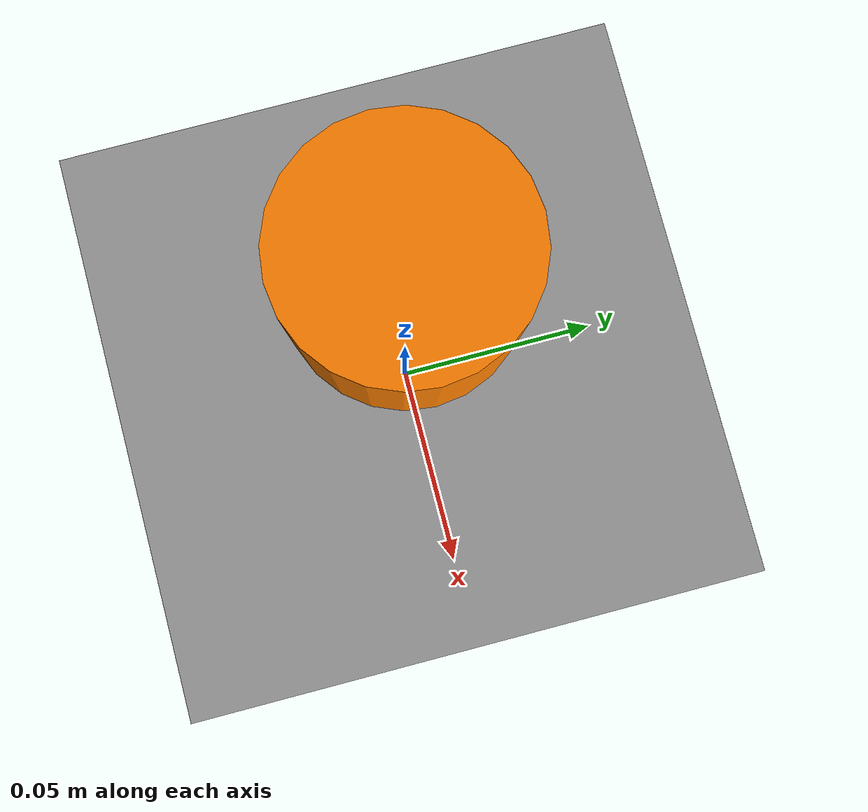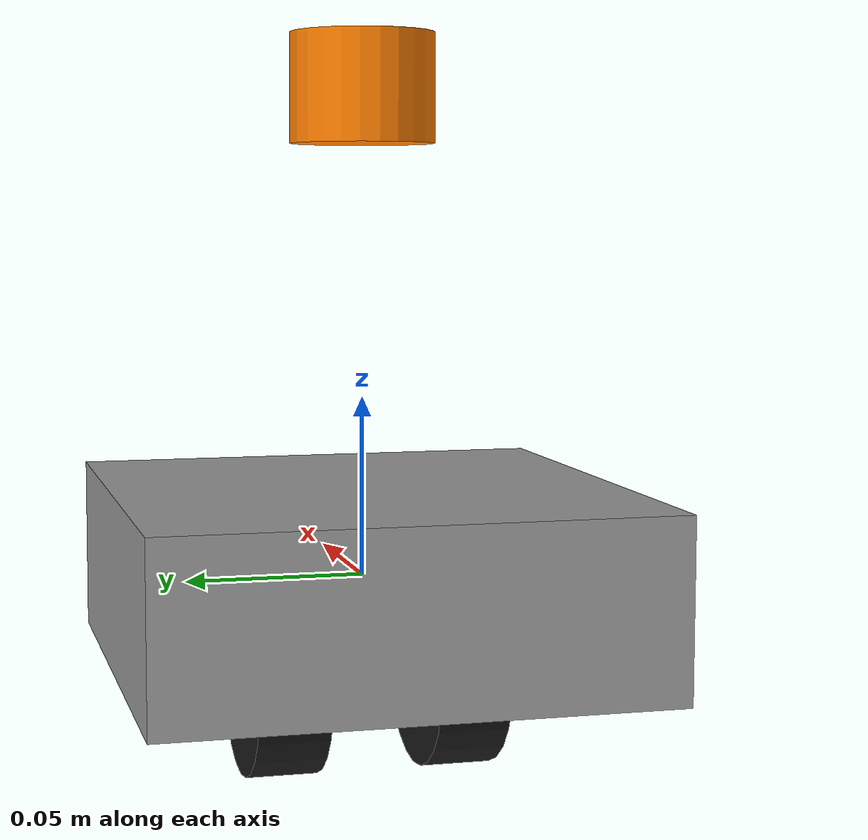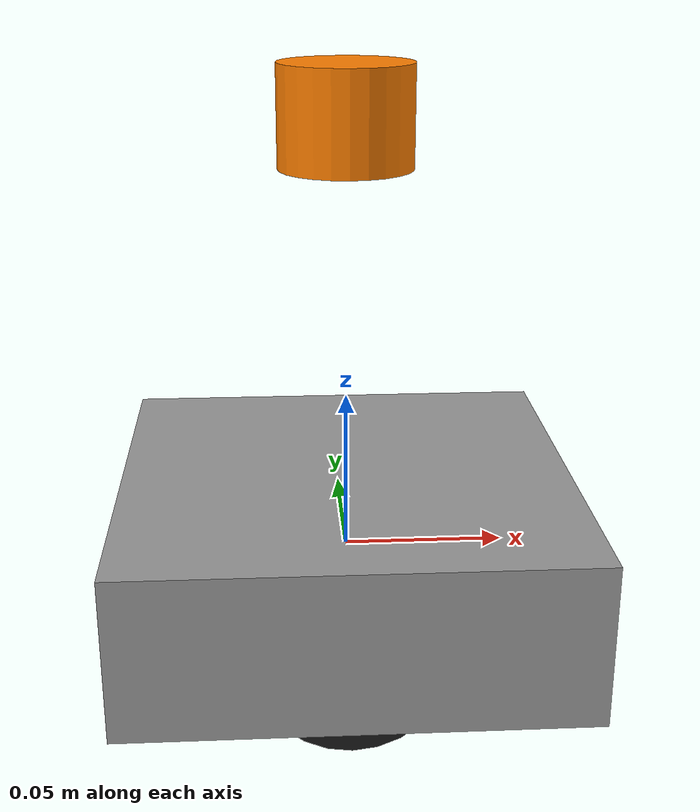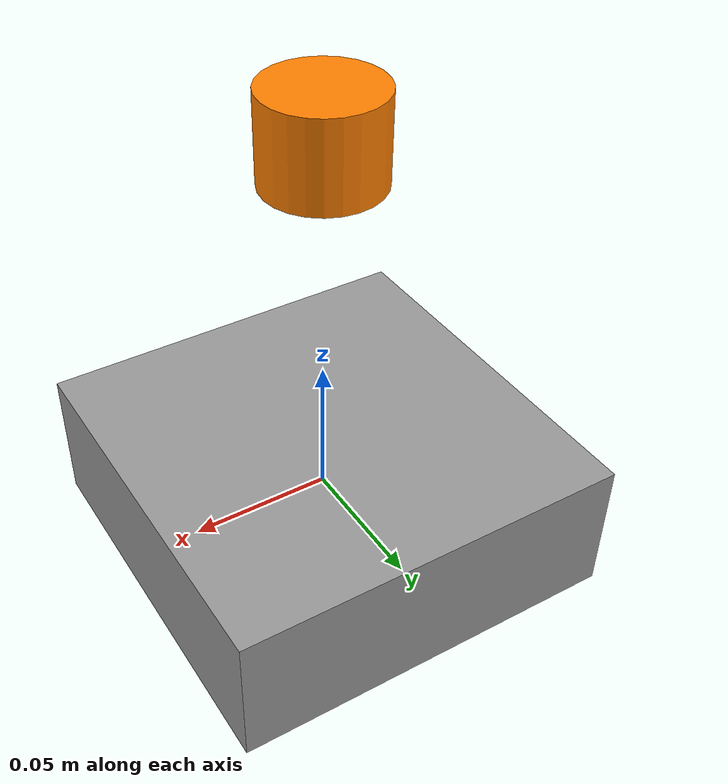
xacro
<?xml version="1.0"?>
<robot name="lidar_robot" xmlns:xacro="http://www.ros.org/wiki/xacro">

  <xacro:property name="base_length" value="0.14"/>
  <xacro:property name="base_width" value="0.14"/>
  <xacro:property name="base_height" value="0.05"/>
  <xacro:property name="wheel_radius" value="0.03"/>
  <xacro:property name="wheel_width" value="0.02"/>
  <xacro:property name="wheel_separation" value="0.05"/>
  <xacro:property name="caster_radius" value="0.015"/>
  <xacro:property name="lidar_height" value="0.16"/>

  <material name="grey"><color rgba="0.6 0.6 0.6 1"/></material>
  <material name="black"><color rgba="0.1 0.1 0.1 1"/></material>
  <material name="orange"><color rgba="1.0 0.5 0.0 1"/></material>

  <link name="base_link">
    <visual>
      <geometry><box size="${base_length} ${base_width} ${base_height}"/></geometry>
      <material name="grey"/>
    </visual>
    <collision>
      <geometry><box size="${base_length} ${base_width} ${base_height}"/></geometry>
    </collision>
    <inertial>
      <mass value="0.5"/>
      <inertia ixx="0.001" ixy="0" ixz="0" iyy="0.001" iyz="0" izz="0.001"/>
    </inertial>
  </link>

  <xacro:macro name="wheel" params="prefix reflect">
    <link name="${prefix}_wheel_link">
      <visual>
        <origin rpy="1.5708 0 0"/>
        <geometry><cylinder radius="${wheel_radius}" length="${wheel_width}"/></geometry>
        <material name="black"/>
      </visual>
      <collision>
        <origin rpy="1.5708 0 0"/>
        <geometry><cylinder radius="${wheel_radius}" length="${wheel_width}"/></geometry>
      </collision>
      <inertial>
        <mass value="0.05"/>
        <inertia ixx="0.0001" ixy="0" ixz="0" iyy="0.0001" iyz="0" izz="0.0001"/>
      </inertial>
    </link>

    <joint name="${prefix}_wheel_joint" type="continuous">
      <parent link="base_link"/>
      <child link="${prefix}_wheel_link"/>
      <origin xyz="0 ${reflect * wheel_separation/2} ${-base_height/2}" rpy="0 0 0"/>
      <axis xyz="0 1 0"/>
    </joint>
  </xacro:macro>

  <xacro:wheel prefix="left" reflect="1"/>
  <xacro:wheel prefix="right" reflect="-1"/>

  <link name="caster_wheel_link">
    <visual>
      <geometry><sphere radius="${caster_radius}"/></geometry>
      <material name="black"/>
    </visual>
    <collision>
      <geometry><sphere radius="${caster_radius}"/></geometry>
    </collision>
    <inertial>
      <mass value="0.02"/>
      <inertia ixx="0.00005" ixy="0" ixz="0" iyy="0.00005" iyz="0" izz="0.00005"/>
    </inertial>
  </link>

  <joint name="caster_wheel_joint" type="fixed">
    <parent link="base_link"/>
    <child link="caster_wheel_link"/>
    <origin xyz="${base_length/2 - 0.02} 0 ${-base_height/2 - caster_radius + wheel_radius}" rpy="0 0 0"/>
  </joint>

  <link name="laser">
    <visual>
      <geometry><cylinder radius="0.02" length="0.03"/></geometry>
      <material name="orange"/>
    </visual>
    <collision>
      <geometry><cylinder radius="0.02" length="0.03"/></geometry>
    </collision>
    <inertial>
      <mass value="0.05"/>
      <inertia ixx="0.0001" ixy="0" ixz="0" iyy="0.0001" iyz="0" izz="0.0001"/>
    </inertial>
  </link>

  <joint name="lidar_joint" type="fixed">
    <parent link="base_link"/>
    <child link="laser"/>
    <origin xyz="0 0 ${lidar_height - base_height/2}" rpy="0 0 0"/>
  </joint>

</robot>
